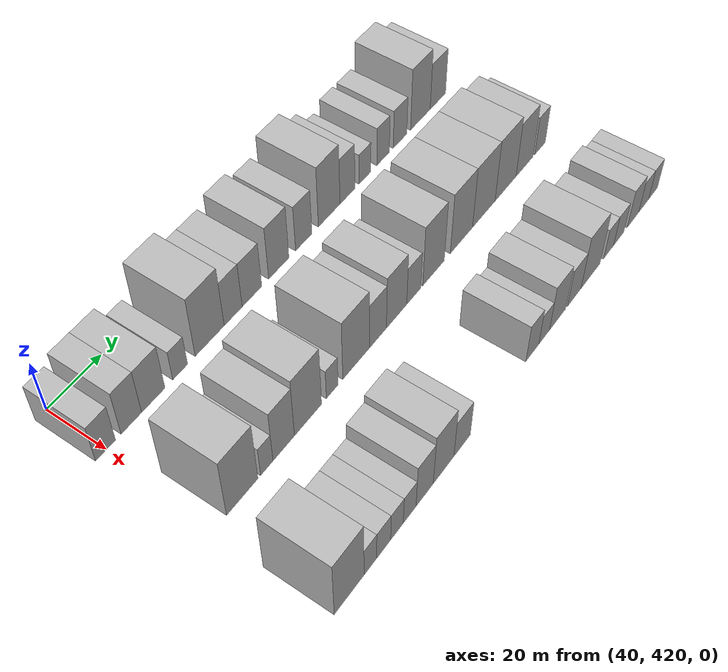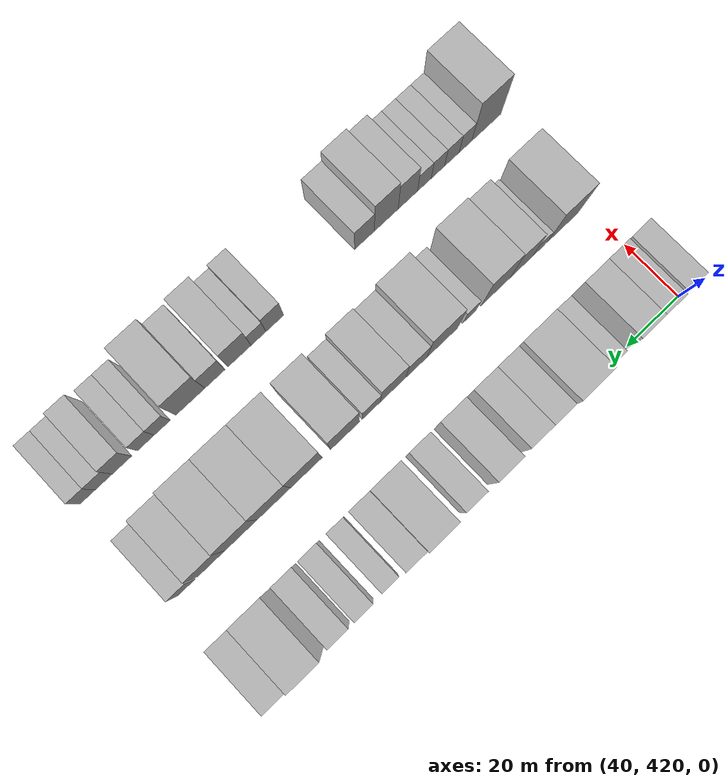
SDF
<sdf version="1.6">
 <world name="default">
  <model name="building_110">
   <static>1</static>
   <pose>50.0000 419.6617 0 0.000000 0.000000 0.000000</pose>
   <link name="link">
    <pose>0 0 7.50 0 0 0</pose>
    <collision name="collision"><geometry><box><size>20.0000 7.1727 15.0000</size></box></geometry></collision>
    <visual name="visual">
     <cast_shadows>0</cast_shadows>
     <geometry><box><size>20.0000 7.1727 15.0000</size></box></geometry>
     <material>
      <script>
       <uri>model://HANNAS_wall/materials/scripts</uri>
       <uri>model://HANNAS_wall/materials/textures</uri>
       <name>vrc/HANNAS_wall</name>
      </script>
     </material>
    </visual>
   </link>
  </model>
  <model name="building_111">
   <static>1</static>
   <pose>50.0000 429.0429 0 0.000000 0.000000 0.000000</pose>
   <link name="link">
    <pose>0 0 9.00 0 0 0</pose>
    <collision name="collision"><geometry><box><size>20.0000 7.5896 18.0000</size></box></geometry></collision>
    <visual name="visual">
     <cast_shadows>0</cast_shadows>
     <geometry><box><size>20.0000 7.5896 18.0000</size></box></geometry>
     <material>
      <script>
       <uri>model://HANNAS_wall/materials/scripts</uri>
       <uri>model://HANNAS_wall/materials/textures</uri>
       <name>vrc/HANNAS_wall</name>
      </script>
     </material>
    </visual>
   </link>
  </model>
  <model name="building_112">
   <static>1</static>
   <pose>50.0000 437.2437 0 0.000000 0.000000 0.000000</pose>
   <link name="link">
    <pose>0 0 9.00 0 0 0</pose>
    <collision name="collision"><geometry><box><size>20.0000 8.8120 18.0000</size></box></geometry></collision>
    <visual name="visual">
     <cast_shadows>0</cast_shadows>
     <geometry><box><size>20.0000 8.8120 18.0000</size></box></geometry>
     <material>
      <script>
       <uri>model://HANNAS_wall/materials/scripts</uri>
       <uri>model://HANNAS_wall/materials/textures</uri>
       <name>vrc/HANNAS_wall</name>
      </script>
     </material>
    </visual>
   </link>
  </model>
  <model name="building_113">
   <static>1</static>
   <pose>50.0000 447.5442 0 0.000000 0.000000 0.000000</pose>
   <link name="link">
    <pose>0 0 6.00 0 0 0</pose>
    <collision name="collision"><geometry><box><size>20.0000 5.7891 12.0000</size></box></geometry></collision>
    <visual name="visual">
     <cast_shadows>0</cast_shadows>
     <geometry><box><size>20.0000 5.7891 12.0000</size></box></geometry>
     <material>
      <script>
       <uri>model://HANNAS_wall/materials/scripts</uri>
       <uri>model://HANNAS_wall/materials/textures</uri>
       <name>vrc/HANNAS_wall</name>
      </script>
     </material>
    </visual>
   </link>
  </model>
  <model name="building_114">
   <static>1</static>
   <pose>50.0000 459.3132 0 0.000000 0.000000 0.000000</pose>
   <link name="link">
    <pose>0 0 12.00 0 0 0</pose>
    <collision name="collision"><geometry><box><size>20.0000 11.7488 24.0000</size></box></geometry></collision>
    <visual name="visual">
     <cast_shadows>0</cast_shadows>
     <geometry><box><size>20.0000 11.7488 24.0000</size></box></geometry>
     <material>
      <script>
       <uri>model://HANNAS_wall/materials/scripts</uri>
       <uri>model://HANNAS_wall/materials/textures</uri>
       <name>vrc/HANNAS_wall</name>
      </script>
     </material>
    </visual>
   </link>
  </model>
  <model name="building_115">
   <static>1</static>
   <pose>50.0000 468.9521 0 0.000000 0.000000 0.000000</pose>
   <link name="link">
    <pose>0 0 9.00 0 0 0</pose>
    <collision name="collision"><geometry><box><size>20.0000 7.5291 18.0000</size></box></geometry></collision>
    <visual name="visual">
     <cast_shadows>0</cast_shadows>
     <geometry><box><size>20.0000 7.5291 18.0000</size></box></geometry>
     <material>
      <script>
       <uri>model://HANNAS_wall/materials/scripts</uri>
       <uri>model://HANNAS_wall/materials/textures</uri>
       <name>vrc/HANNAS_wall</name>
      </script>
     </material>
    </visual>
   </link>
  </model>
  <model name="building_116">
   <static>1</static>
   <pose>50.0000 476.8816 0 0.000000 0.000000 0.000000</pose>
   <link name="link">
    <pose>0 0 9.00 0 0 0</pose>
    <collision name="collision"><geometry><box><size>20.0000 8.3298 18.0000</size></box></geometry></collision>
    <visual name="visual">
     <cast_shadows>0</cast_shadows>
     <geometry><box><size>20.0000 8.3298 18.0000</size></box></geometry>
     <material>
      <script>
       <uri>model://HANNAS_wall/materials/scripts</uri>
       <uri>model://HANNAS_wall/materials/textures</uri>
       <name>vrc/HANNAS_wall</name>
      </script>
     </material>
    </visual>
   </link>
  </model>
  <model name="building_117">
   <static>1</static>
   <pose>50.0000 488.5108 0 0.000000 0.000000 0.000000</pose>
   <link name="link">
    <pose>0 0 10.50 0 0 0</pose>
    <collision name="collision"><geometry><box><size>20.0000 8.9287 21.0000</size></box></geometry></collision>
    <visual name="visual">
     <cast_shadows>0</cast_shadows>
     <geometry><box><size>20.0000 8.9287 21.0000</size></box></geometry>
     <material>
      <script>
       <uri>model://HANNAS_wall/materials/scripts</uri>
       <uri>model://HANNAS_wall/materials/textures</uri>
       <name>vrc/HANNAS_wall</name>
      </script>
     </material>
    </visual>
   </link>
  </model>
  <model name="building_118">
   <static>1</static>
   <pose>50.0000 499.6946 0 0.000000 0.000000 0.000000</pose>
   <link name="link">
    <pose>0 0 9.00 0 0 0</pose>
    <collision name="collision"><geometry><box><size>20.0000 7.4390 18.0000</size></box></geometry></collision>
    <visual name="visual">
     <cast_shadows>0</cast_shadows>
     <geometry><box><size>20.0000 7.4390 18.0000</size></box></geometry>
     <material>
      <script>
       <uri>model://HANNAS_wall/materials/scripts</uri>
       <uri>model://HANNAS_wall/materials/textures</uri>
       <name>vrc/HANNAS_wall</name>
      </script>
     </material>
    </visual>
   </link>
  </model>
  <model name="building_119">
   <static>1</static>
   <pose>50.0000 511.5162 0 0.000000 0.000000 0.000000</pose>
   <link name="link">
    <pose>0 0 12.00 0 0 0</pose>
    <collision name="collision"><geometry><box><size>20.0000 10.2040 24.0000</size></box></geometry></collision>
    <visual name="visual">
     <cast_shadows>0</cast_shadows>
     <geometry><box><size>20.0000 10.2040 24.0000</size></box></geometry>
     <material>
      <script>
       <uri>model://HANNAS_wall/materials/scripts</uri>
       <uri>model://HANNAS_wall/materials/textures</uri>
       <name>vrc/HANNAS_wall</name>
      </script>
     </material>
    </visual>
   </link>
  </model>
  <model name="building_120">
   <static>1</static>
   <pose>50.0000 520.2251 0 0.000000 0.000000 0.000000</pose>
   <link name="link">
    <pose>0 0 9.00 0 0 0</pose>
    <collision name="collision"><geometry><box><size>20.0000 7.2137 18.0000</size></box></geometry></collision>
    <visual name="visual">
     <cast_shadows>0</cast_shadows>
     <geometry><box><size>20.0000 7.2137 18.0000</size></box></geometry>
     <material>
      <script>
       <uri>model://HANNAS_wall/materials/scripts</uri>
       <uri>model://HANNAS_wall/materials/textures</uri>
       <name>vrc/HANNAS_wall</name>
      </script>
     </material>
    </visual>
   </link>
  </model>
  <model name="building_121">
   <static>1</static>
   <pose>50.0000 528.7629 0 0.000000 0.000000 0.000000</pose>
   <link name="link">
    <pose>0 0 6.00 0 0 0</pose>
    <collision name="collision"><geometry><box><size>20.0000 5.8620 12.0000</size></box></geometry></collision>
    <visual name="visual">
     <cast_shadows>0</cast_shadows>
     <geometry><box><size>20.0000 5.8620 12.0000</size></box></geometry>
     <material>
      <script>
       <uri>model://HANNAS_wall/materials/scripts</uri>
       <uri>model://HANNAS_wall/materials/textures</uri>
       <name>vrc/HANNAS_wall</name>
      </script>
     </material>
    </visual>
   </link>
  </model>
  <model name="building_122">
   <static>1</static>
   <pose>50.0000 537.8641 0 0.000000 0.000000 0.000000</pose>
   <link name="link">
    <pose>0 0 7.50 0 0 0</pose>
    <collision name="collision"><geometry><box><size>20.0000 6.3404 15.0000</size></box></geometry></collision>
    <visual name="visual">
     <cast_shadows>0</cast_shadows>
     <geometry><box><size>20.0000 6.3404 15.0000</size></box></geometry>
     <material>
      <script>
       <uri>model://HANNAS_wall/materials/scripts</uri>
       <uri>model://HANNAS_wall/materials/textures</uri>
       <name>vrc/HANNAS_wall</name>
      </script>
     </material>
    </visual>
   </link>
  </model>
  <model name="building_123">
   <static>1</static>
   <pose>50.0000 546.5452 0 0.000000 0.000000 0.000000</pose>
   <link name="link">
    <pose>0 0 7.50 0 0 0</pose>
    <collision name="collision"><geometry><box><size>20.0000 7.0218 15.0000</size></box></geometry></collision>
    <visual name="visual">
     <cast_shadows>0</cast_shadows>
     <geometry><box><size>20.0000 7.0218 15.0000</size></box></geometry>
     <material>
      <script>
       <uri>model://HANNAS_wall/materials/scripts</uri>
       <uri>model://HANNAS_wall/materials/textures</uri>
       <name>vrc/HANNAS_wall</name>
      </script>
     </material>
    </visual>
   </link>
  </model>
  <model name="building_124">
   <static>1</static>
   <pose>50.0000 557.2806 0 0.000000 0.000000 0.000000</pose>
   <link name="link">
    <pose>0 0 12.00 0 0 0</pose>
    <collision name="collision"><geometry><box><size>20.0000 10.4491 24.0000</size></box></geometry></collision>
    <visual name="visual">
     <cast_shadows>0</cast_shadows>
     <geometry><box><size>20.0000 10.4491 24.0000</size></box></geometry>
     <material>
      <script>
       <uri>model://HANNAS_wall/materials/scripts</uri>
       <uri>model://HANNAS_wall/materials/textures</uri>
       <name>vrc/HANNAS_wall</name>
      </script>
     </material>
    </visual>
   </link>
  </model>
  <model name="building_125">
   <static>1</static>
   <pose>50.0000 566.7049 0 0.000000 0.000000 0.000000</pose>
   <link name="link">
    <pose>0 0 9.00 0 0 0</pose>
    <collision name="collision"><geometry><box><size>20.0000 8.3993 18.0000</size></box></geometry></collision>
    <visual name="visual">
     <cast_shadows>0</cast_shadows>
     <geometry><box><size>20.0000 8.3993 18.0000</size></box></geometry>
     <material>
      <script>
       <uri>model://HANNAS_wall/materials/scripts</uri>
       <uri>model://HANNAS_wall/materials/textures</uri>
       <name>vrc/HANNAS_wall</name>
      </script>
     </material>
    </visual>
   </link>
  </model>
  <model name="building_236">
   <static>1</static>
   <pose>85.0000 428.9063 0 0.000000 0.000000 0.000000</pose>
   <link name="link">
    <pose>0 0 12.00 0 0 0</pose>
    <collision name="collision"><geometry><box><size>20.0000 11.9125 24.0000</size></box></geometry></collision>
    <visual name="visual">
     <cast_shadows>0</cast_shadows>
     <geometry><box><size>20.0000 11.9125 24.0000</size></box></geometry>
     <material>
      <script>
       <uri>model://HANNAS_wall/materials/scripts</uri>
       <uri>model://HANNAS_wall/materials/textures</uri>
       <name>vrc/HANNAS_wall</name>
      </script>
     </material>
    </visual>
   </link>
  </model>
  <model name="building_237">
   <static>1</static>
   <pose>85.0000 438.2870 0 0.000000 0.000000 0.000000</pose>
   <link name="link">
    <pose>0 0 6.00 0 0 0</pose>
    <collision name="collision"><geometry><box><size>20.0000 4.8489 12.0000</size></box></geometry></collision>
    <visual name="visual">
     <cast_shadows>0</cast_shadows>
     <geometry><box><size>20.0000 4.8489 12.0000</size></box></geometry>
     <material>
      <script>
       <uri>model://HANNAS_wall/materials/scripts</uri>
       <uri>model://HANNAS_wall/materials/textures</uri>
       <name>vrc/HANNAS_wall</name>
      </script>
     </material>
    </visual>
   </link>
  </model>
  <model name="building_238">
   <static>1</static>
   <pose>85.0000 444.9975 0 0.000000 0.000000 0.000000</pose>
   <link name="link">
    <pose>0 0 10.50 0 0 0</pose>
    <collision name="collision"><geometry><box><size>20.0000 8.5721 21.0000</size></box></geometry></collision>
    <visual name="visual">
     <cast_shadows>0</cast_shadows>
     <geometry><box><size>20.0000 8.5721 21.0000</size></box></geometry>
     <material>
      <script>
       <uri>model://HANNAS_wall/materials/scripts</uri>
       <uri>model://HANNAS_wall/materials/textures</uri>
       <name>vrc/HANNAS_wall</name>
      </script>
     </material>
    </visual>
   </link>
  </model>
  <model name="building_239">
   <static>1</static>
   <pose>85.0000 454.8593 0 0.000000 0.000000 0.000000</pose>
   <link name="link">
    <pose>0 0 12.00 0 0 0</pose>
    <collision name="collision"><geometry><box><size>20.0000 11.1515 24.0000</size></box></geometry></collision>
    <visual name="visual">
     <cast_shadows>0</cast_shadows>
     <geometry><box><size>20.0000 11.1515 24.0000</size></box></geometry>
     <material>
      <script>
       <uri>model://HANNAS_wall/materials/scripts</uri>
       <uri>model://HANNAS_wall/materials/textures</uri>
       <name>vrc/HANNAS_wall</name>
      </script>
     </material>
    </visual>
   </link>
  </model>
  <model name="building_240">
   <static>1</static>
   <pose>85.0000 464.9368 0 0.000000 0.000000 0.000000</pose>
   <link name="link">
    <pose>0 0 6.00 0 0 0</pose>
    <collision name="collision"><geometry><box><size>20.0000 5.0035 12.0000</size></box></geometry></collision>
    <visual name="visual">
     <cast_shadows>0</cast_shadows>
     <geometry><box><size>20.0000 5.0035 12.0000</size></box></geometry>
     <material>
      <script>
       <uri>model://HANNAS_wall/materials/scripts</uri>
       <uri>model://HANNAS_wall/materials/textures</uri>
       <name>vrc/HANNAS_wall</name>
      </script>
     </material>
    </visual>
   </link>
  </model>
  <model name="building_241">
   <static>1</static>
   <pose>85.0000 475.2543 0 0.000000 0.000000 0.000000</pose>
   <link name="link">
    <pose>0 0 12.00 0 0 0</pose>
    <collision name="collision"><geometry><box><size>20.0000 11.6315 24.0000</size></box></geometry></collision>
    <visual name="visual">
     <cast_shadows>0</cast_shadows>
     <geometry><box><size>20.0000 11.6315 24.0000</size></box></geometry>
     <material>
      <script>
       <uri>model://HANNAS_wall/materials/scripts</uri>
       <uri>model://HANNAS_wall/materials/textures</uri>
       <name>vrc/HANNAS_wall</name>
      </script>
     </material>
    </visual>
   </link>
  </model>
  <model name="building_242">
   <static>1</static>
   <pose>85.0000 484.9544 0 0.000000 0.000000 0.000000</pose>
   <link name="link">
    <pose>0 0 9.00 0 0 0</pose>
    <collision name="collision"><geometry><box><size>20.0000 7.7686 18.0000</size></box></geometry></collision>
    <visual name="visual">
     <cast_shadows>0</cast_shadows>
     <geometry><box><size>20.0000 7.7686 18.0000</size></box></geometry>
     <material>
      <script>
       <uri>model://HANNAS_wall/materials/scripts</uri>
       <uri>model://HANNAS_wall/materials/textures</uri>
       <name>vrc/HANNAS_wall</name>
      </script>
     </material>
    </visual>
   </link>
  </model>
  <model name="building_243">
   <static>1</static>
   <pose>85.0000 493.5506 0 0.000000 0.000000 0.000000</pose>
   <link name="link">
    <pose>0 0 10.50 0 0 0</pose>
    <collision name="collision"><geometry><box><size>20.0000 9.4238 21.0000</size></box></geometry></collision>
    <visual name="visual">
     <cast_shadows>0</cast_shadows>
     <geometry><box><size>20.0000 9.4238 21.0000</size></box></geometry>
     <material>
      <script>
       <uri>model://HANNAS_wall/materials/scripts</uri>
       <uri>model://HANNAS_wall/materials/textures</uri>
       <name>vrc/HANNAS_wall</name>
      </script>
     </material>
    </visual>
   </link>
  </model>
  <model name="building_244">
   <static>1</static>
   <pose>85.0000 501.5658 0 0.000000 0.000000 0.000000</pose>
   <link name="link">
    <pose>0 0 7.50 0 0 0</pose>
    <collision name="collision"><geometry><box><size>20.0000 6.6067 15.0000</size></box></geometry></collision>
    <visual name="visual">
     <cast_shadows>0</cast_shadows>
     <geometry><box><size>20.0000 6.6067 15.0000</size></box></geometry>
     <material>
      <script>
       <uri>model://HANNAS_wall/materials/scripts</uri>
       <uri>model://HANNAS_wall/materials/textures</uri>
       <name>vrc/HANNAS_wall</name>
      </script>
     </material>
    </visual>
   </link>
  </model>
  <model name="building_245">
   <static>1</static>
   <pose>85.0000 511.1299 0 0.000000 0.000000 0.000000</pose>
   <link name="link">
    <pose>0 0 12.00 0 0 0</pose>
    <collision name="collision"><geometry><box><size>20.0000 10.5215 24.0000</size></box></geometry></collision>
    <visual name="visual">
     <cast_shadows>0</cast_shadows>
     <geometry><box><size>20.0000 10.5215 24.0000</size></box></geometry>
     <material>
      <script>
       <uri>model://HANNAS_wall/materials/scripts</uri>
       <uri>model://HANNAS_wall/materials/textures</uri>
       <name>vrc/HANNAS_wall</name>
      </script>
     </material>
    </visual>
   </link>
  </model>
  <model name="building_246">
   <static>1</static>
   <pose>85.0000 525.0527 0 0.000000 0.000000 0.000000</pose>
   <link name="link">
    <pose>0 0 12.00 0 0 0</pose>
    <collision name="collision"><geometry><box><size>20.0000 11.3241 24.0000</size></box></geometry></collision>
    <visual name="visual">
     <cast_shadows>0</cast_shadows>
     <geometry><box><size>20.0000 11.3241 24.0000</size></box></geometry>
     <material>
      <script>
       <uri>model://HANNAS_wall/materials/scripts</uri>
       <uri>model://HANNAS_wall/materials/textures</uri>
       <name>vrc/HANNAS_wall</name>
      </script>
     </material>
    </visual>
   </link>
  </model>
  <model name="building_247">
   <static>1</static>
   <pose>85.0000 536.6358 0 0.000000 0.000000 0.000000</pose>
   <link name="link">
    <pose>0 0 12.00 0 0 0</pose>
    <collision name="collision"><geometry><box><size>20.0000 11.8420 24.0000</size></box></geometry></collision>
    <visual name="visual">
     <cast_shadows>0</cast_shadows>
     <geometry><box><size>20.0000 11.8420 24.0000</size></box></geometry>
     <material>
      <script>
       <uri>model://HANNAS_wall/materials/scripts</uri>
       <uri>model://HANNAS_wall/materials/textures</uri>
       <name>vrc/HANNAS_wall</name>
      </script>
     </material>
    </visual>
   </link>
  </model>
  <model name="building_248">
   <static>1</static>
   <pose>85.0000 548.2625 0 0.000000 0.000000 0.000000</pose>
   <link name="link">
    <pose>0 0 12.00 0 0 0</pose>
    <collision name="collision"><geometry><box><size>20.0000 11.4116 24.0000</size></box></geometry></collision>
    <visual name="visual">
     <cast_shadows>0</cast_shadows>
     <geometry><box><size>20.0000 11.4116 24.0000</size></box></geometry>
     <material>
      <script>
       <uri>model://HANNAS_wall/materials/scripts</uri>
       <uri>model://HANNAS_wall/materials/textures</uri>
       <name>vrc/HANNAS_wall</name>
      </script>
     </material>
    </visual>
   </link>
  </model>
  <model name="building_249">
   <static>1</static>
   <pose>85.0000 558.7030 0 0.000000 0.000000 0.000000</pose>
   <link name="link">
    <pose>0 0 10.50 0 0 0</pose>
    <collision name="collision"><geometry><box><size>20.0000 9.4694 21.0000</size></box></geometry></collision>
    <visual name="visual">
     <cast_shadows>0</cast_shadows>
     <geometry><box><size>20.0000 9.4694 21.0000</size></box></geometry>
     <material>
      <script>
       <uri>model://HANNAS_wall/materials/scripts</uri>
       <uri>model://HANNAS_wall/materials/textures</uri>
       <name>vrc/HANNAS_wall</name>
      </script>
     </material>
    </visual>
   </link>
  </model>
  <model name="building_250">
   <static>1</static>
   <pose>85.0000 567.4385 0 0.000000 0.000000 0.000000</pose>
   <link name="link">
    <pose>0 0 7.50 0 0 0</pose>
    <collision name="collision"><geometry><box><size>20.0000 6.0015 15.0000</size></box></geometry></collision>
    <visual name="visual">
     <cast_shadows>0</cast_shadows>
     <geometry><box><size>20.0000 6.0015 15.0000</size></box></geometry>
     <material>
      <script>
       <uri>model://HANNAS_wall/materials/scripts</uri>
       <uri>model://HANNAS_wall/materials/textures</uri>
       <name>vrc/HANNAS_wall</name>
      </script>
     </material>
    </visual>
   </link>
  </model>
  <model name="building_364">
   <static>1</static>
   <pose>120.0000 423.4359 0 0.000000 0.000000 0.000000</pose>
   <link name="link">
    <pose>0 0 12.00 0 0 0</pose>
    <collision name="collision"><geometry><box><size>20.0000 11.5282 24.0000</size></box></geometry></collision>
    <visual name="visual">
     <cast_shadows>0</cast_shadows>
     <geometry><box><size>20.0000 11.5282 24.0000</size></box></geometry>
     <material>
      <script>
       <uri>model://HANNAS_wall/materials/scripts</uri>
       <uri>model://HANNAS_wall/materials/textures</uri>
       <name>vrc/HANNAS_wall</name>
      </script>
     </material>
    </visual>
   </link>
  </model>
  <model name="building_365">
   <static>1</static>
   <pose>120.0000 431.6824 0 0.000000 0.000000 0.000000</pose>
   <link name="link">
    <pose>0 0 6.00 0 0 0</pose>
    <collision name="collision"><geometry><box><size>20.0000 4.9648 12.0000</size></box></geometry></collision>
    <visual name="visual">
     <cast_shadows>0</cast_shadows>
     <geometry><box><size>20.0000 4.9648 12.0000</size></box></geometry>
     <material>
      <script>
       <uri>model://HANNAS_wall/materials/scripts</uri>
       <uri>model://HANNAS_wall/materials/textures</uri>
       <name>vrc/HANNAS_wall</name>
      </script>
     </material>
    </visual>
   </link>
  </model>
  <model name="building_366">
   <static>1</static>
   <pose>120.0000 437.0034 0 0.000000 0.000000 0.000000</pose>
   <link name="link">
    <pose>0 0 6.00 0 0 0</pose>
    <collision name="collision"><geometry><box><size>20.0000 5.6773 12.0000</size></box></geometry></collision>
    <visual name="visual">
     <cast_shadows>0</cast_shadows>
     <geometry><box><size>20.0000 5.6773 12.0000</size></box></geometry>
     <material>
      <script>
       <uri>model://HANNAS_wall/materials/scripts</uri>
       <uri>model://HANNAS_wall/materials/textures</uri>
       <name>vrc/HANNAS_wall</name>
      </script>
     </material>
    </visual>
   </link>
  </model>
  <model name="building_367">
   <static>1</static>
   <pose>120.0000 442.4347 0 0.000000 0.000000 0.000000</pose>
   <link name="link">
    <pose>0 0 6.00 0 0 0</pose>
    <collision name="collision"><geometry><box><size>20.0000 5.1852 12.0000</size></box></geometry></collision>
    <visual name="visual">
     <cast_shadows>0</cast_shadows>
     <geometry><box><size>20.0000 5.1852 12.0000</size></box></geometry>
     <material>
      <script>
       <uri>model://HANNAS_wall/materials/scripts</uri>
       <uri>model://HANNAS_wall/materials/textures</uri>
       <name>vrc/HANNAS_wall</name>
      </script>
     </material>
    </visual>
   </link>
  </model>
  <model name="building_368">
   <static>1</static>
   <pose>120.0000 447.6849 0 0.000000 0.000000 0.000000</pose>
   <link name="link">
    <pose>0 0 6.00 0 0 0</pose>
    <collision name="collision"><geometry><box><size>20.0000 5.3152 12.0000</size></box></geometry></collision>
    <visual name="visual">
     <cast_shadows>0</cast_shadows>
     <geometry><box><size>20.0000 5.3152 12.0000</size></box></geometry>
     <material>
      <script>
       <uri>model://HANNAS_wall/materials/scripts</uri>
       <uri>model://HANNAS_wall/materials/textures</uri>
       <name>vrc/HANNAS_wall</name>
      </script>
     </material>
    </visual>
   </link>
  </model>
  <model name="building_369">
   <static>1</static>
   <pose>120.0000 454.0351 0 0.000000 0.000000 0.000000</pose>
   <link name="link">
    <pose>0 0 9.00 0 0 0</pose>
    <collision name="collision"><geometry><box><size>20.0000 7.3852 18.0000</size></box></geometry></collision>
    <visual name="visual">
     <cast_shadows>0</cast_shadows>
     <geometry><box><size>20.0000 7.3852 18.0000</size></box></geometry>
     <material>
      <script>
       <uri>model://HANNAS_wall/materials/scripts</uri>
       <uri>model://HANNAS_wall/materials/textures</uri>
       <name>vrc/HANNAS_wall</name>
      </script>
     </material>
    </visual>
   </link>
  </model>
  <model name="building_370">
   <static>1</static>
   <pose>120.0000 462.2620 0 0.000000 0.000000 0.000000</pose>
   <link name="link">
    <pose>0 0 10.50 0 0 0</pose>
    <collision name="collision"><geometry><box><size>20.0000 9.0685 21.0000</size></box></geometry></collision>
    <visual name="visual">
     <cast_shadows>0</cast_shadows>
     <geometry><box><size>20.0000 9.0685 21.0000</size></box></geometry>
     <material>
      <script>
       <uri>model://HANNAS_wall/materials/scripts</uri>
       <uri>model://HANNAS_wall/materials/textures</uri>
       <name>vrc/HANNAS_wall</name>
      </script>
     </material>
    </visual>
   </link>
  </model>
  <model name="building_371">
   <static>1</static>
   <pose>120.0000 470.4981 0 0.000000 0.000000 0.000000</pose>
   <link name="link">
    <pose>0 0 7.50 0 0 0</pose>
    <collision name="collision"><geometry><box><size>20.0000 7.4038 15.0000</size></box></geometry></collision>
    <visual name="visual">
     <cast_shadows>0</cast_shadows>
     <geometry><box><size>20.0000 7.4038 15.0000</size></box></geometry>
     <material>
      <script>
       <uri>model://HANNAS_wall/materials/scripts</uri>
       <uri>model://HANNAS_wall/materials/textures</uri>
       <name>vrc/HANNAS_wall</name>
      </script>
     </material>
    </visual>
   </link>
  </model>
  <model name="building_372">
   <static>1</static>
   <pose>120.0000 503.9196 0 0.000000 0.000000 0.000000</pose>
   <link name="link">
    <pose>0 0 7.50 0 0 0</pose>
    <collision name="collision"><geometry><box><size>20.0000 6.4797 15.0000</size></box></geometry></collision>
    <visual name="visual">
     <cast_shadows>0</cast_shadows>
     <geometry><box><size>20.0000 6.4797 15.0000</size></box></geometry>
     <material>
      <script>
       <uri>model://HANNAS_wall/materials/scripts</uri>
       <uri>model://HANNAS_wall/materials/textures</uri>
       <name>vrc/HANNAS_wall</name>
      </script>
     </material>
    </visual>
   </link>
  </model>
  <model name="building_373">
   <static>1</static>
   <pose>120.0000 509.8856 0 0.000000 0.000000 0.000000</pose>
   <link name="link">
    <pose>0 0 6.00 0 0 0</pose>
    <collision name="collision"><geometry><box><size>20.0000 5.4522 12.0000</size></box></geometry></collision>
    <visual name="visual">
     <cast_shadows>0</cast_shadows>
     <geometry><box><size>20.0000 5.4522 12.0000</size></box></geometry>
     <material>
      <script>
       <uri>model://HANNAS_wall/materials/scripts</uri>
       <uri>model://HANNAS_wall/materials/textures</uri>
       <name>vrc/HANNAS_wall</name>
      </script>
     </material>
    </visual>
   </link>
  </model>
  <model name="building_374">
   <static>1</static>
   <pose>120.0000 516.8247 0 0.000000 0.000000 0.000000</pose>
   <link name="link">
    <pose>0 0 9.00 0 0 0</pose>
    <collision name="collision"><geometry><box><size>20.0000 8.4260 18.0000</size></box></geometry></collision>
    <visual name="visual">
     <cast_shadows>0</cast_shadows>
     <geometry><box><size>20.0000 8.4260 18.0000</size></box></geometry>
     <material>
      <script>
       <uri>model://HANNAS_wall/materials/scripts</uri>
       <uri>model://HANNAS_wall/materials/textures</uri>
       <name>vrc/HANNAS_wall</name>
      </script>
     </material>
    </visual>
   </link>
  </model>
  <model name="building_375">
   <static>1</static>
   <pose>120.0000 525.6663 0 0.000000 0.000000 0.000000</pose>
   <link name="link">
    <pose>0 0 7.50 0 0 0</pose>
    <collision name="collision"><geometry><box><size>20.0000 7.2572 15.0000</size></box></geometry></collision>
    <visual name="visual">
     <cast_shadows>0</cast_shadows>
     <geometry><box><size>20.0000 7.2572 15.0000</size></box></geometry>
     <material>
      <script>
       <uri>model://HANNAS_wall/materials/scripts</uri>
       <uri>model://HANNAS_wall/materials/textures</uri>
       <name>vrc/HANNAS_wall</name>
      </script>
     </material>
    </visual>
   </link>
  </model>
  <model name="building_376">
   <static>1</static>
   <pose>120.0000 534.4937 0 0.000000 0.000000 0.000000</pose>
   <link name="link">
    <pose>0 0 10.50 0 0 0</pose>
    <collision name="collision"><geometry><box><size>20.0000 10.3975 21.0000</size></box></geometry></collision>
    <visual name="visual">
     <cast_shadows>0</cast_shadows>
     <geometry><box><size>20.0000 10.3975 21.0000</size></box></geometry>
     <material>
      <script>
       <uri>model://HANNAS_wall/materials/scripts</uri>
       <uri>model://HANNAS_wall/materials/textures</uri>
       <name>vrc/HANNAS_wall</name>
      </script>
     </material>
    </visual>
   </link>
  </model>
  <model name="building_377">
   <static>1</static>
   <pose>120.0000 544.5158 0 0.000000 0.000000 0.000000</pose>
   <link name="link">
    <pose>0 0 6.00 0 0 0</pose>
    <collision name="collision"><geometry><box><size>20.0000 5.6468 12.0000</size></box></geometry></collision>
    <visual name="visual">
     <cast_shadows>0</cast_shadows>
     <geometry><box><size>20.0000 5.6468 12.0000</size></box></geometry>
     <material>
      <script>
       <uri>model://HANNAS_wall/materials/scripts</uri>
       <uri>model://HANNAS_wall/materials/textures</uri>
       <name>vrc/HANNAS_wall</name>
      </script>
     </material>
    </visual>
   </link>
  </model>
  <model name="building_378">
   <static>1</static>
   <pose>120.0000 550.3014 0 0.000000 0.000000 0.000000</pose>
   <link name="link">
    <pose>0 0 6.00 0 0 0</pose>
    <collision name="collision"><geometry><box><size>20.0000 5.9243 12.0000</size></box></geometry></collision>
    <visual name="visual">
     <cast_shadows>0</cast_shadows>
     <geometry><box><size>20.0000 5.9243 12.0000</size></box></geometry>
     <material>
      <script>
       <uri>model://HANNAS_wall/materials/scripts</uri>
       <uri>model://HANNAS_wall/materials/textures</uri>
       <name>vrc/HANNAS_wall</name>
      </script>
     </material>
    </visual>
   </link>
  </model>
  <model name="building_379">
   <static>1</static>
   <pose>120.0000 558.6465 0 0.000000 0.000000 0.000000</pose>
   <link name="link">
    <pose>0 0 7.50 0 0 0</pose>
    <collision name="collision"><geometry><box><size>20.0000 6.7659 15.0000</size></box></geometry></collision>
    <visual name="visual">
     <cast_shadows>0</cast_shadows>
     <geometry><box><size>20.0000 6.7659 15.0000</size></box></geometry>
     <material>
      <script>
       <uri>model://HANNAS_wall/materials/scripts</uri>
       <uri>model://HANNAS_wall/materials/textures</uri>
       <name>vrc/HANNAS_wall</name>
      </script>
     </material>
    </visual>
   </link>
  </model>
  <model name="building_380">
   <static>1</static>
   <pose>120.0000 564.9920 0 0.000000 0.000000 0.000000</pose>
   <link name="link">
    <pose>0 0 6.00 0 0 0</pose>
    <collision name="collision"><geometry><box><size>20.0000 5.9249 12.0000</size></box></geometry></collision>
    <visual name="visual">
     <cast_shadows>0</cast_shadows>
     <geometry><box><size>20.0000 5.9249 12.0000</size></box></geometry>
     <material>
      <script>
       <uri>model://HANNAS_wall/materials/scripts</uri>
       <uri>model://HANNAS_wall/materials/textures</uri>
       <name>vrc/HANNAS_wall</name>
      </script>
     </material>
    </visual>
   </link>
  </model>
  <model name="building_381">
   <static>1</static>
   <pose>120.0000 570.6553 0 0.000000 0.000000 0.000000</pose>
   <link name="link">
    <pose>0 0 6.00 0 0 0</pose>
    <collision name="collision"><geometry><box><size>20.0000 5.4018 12.0000</size></box></geometry></collision>
    <visual name="visual">
     <cast_shadows>0</cast_shadows>
     <geometry><box><size>20.0000 5.4018 12.0000</size></box></geometry>
     <material>
      <script>
       <uri>model://HANNAS_wall/materials/scripts</uri>
       <uri>model://HANNAS_wall/materials/textures</uri>
       <name>vrc/HANNAS_wall</name>
      </script>
     </material>
    </visual>
   </link>
  </model>
 </world>
</sdf>
